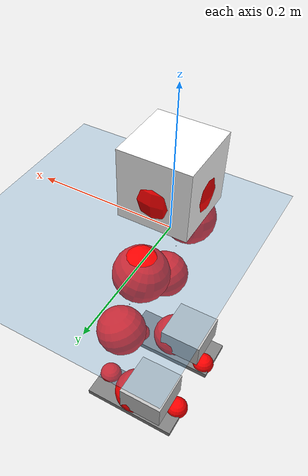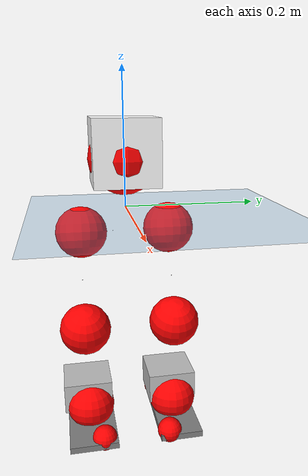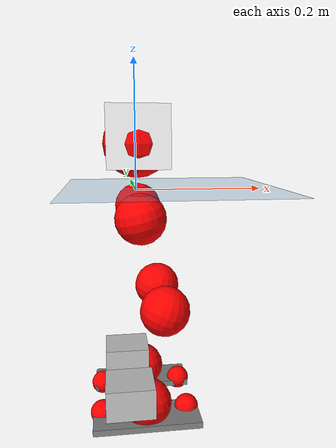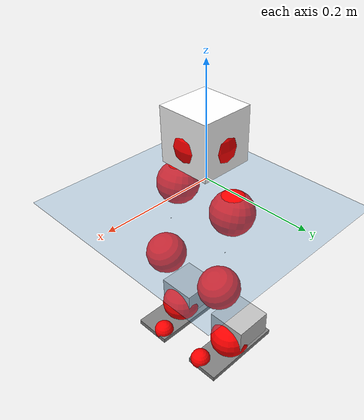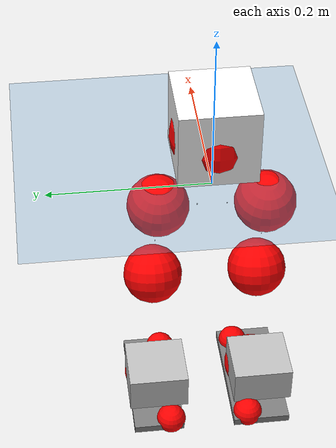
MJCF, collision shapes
<mujoco model="pi_12dof_release_v1">
  <compiler angle="radian" assetdir="assets" balanceinertia="true" inertiafromgeom="false"/>

  <option timestep="0.005" density="1.2" viscosity="2e-05"/>

  <size nkey="1"/>

  <visual>
    <quality shadowsize="8192"/>
    <map shadowclip="0.5"/>
  </visual>

  <default>
    <default class="/">
      <joint armature="0.01" damping="0.01" frictionloss="0.01"/>
      <geom contype="0" conaffinity="0" group="1" solref="-1000 -80"/>
      <site size="0.01 0.005 0.005" group="5"/>
      <general forcelimited="true" biastype="affine" gainprm="20" biasprm="0 -20 -0.5"/>
      <default class="foot">
        <geom size="0.0845 0.036 0.005" type="box" condim="6" group="4" priority="1" friction="0.9 0.2 0.2" solimp="0.015 1 0.005"/>
      </default>
      <default class="reward_collision_sphere">
        <geom group="5" rgba="1 0 0 1"/>
      </default>
    </default>
  </default>

  <asset>
    <texture type="skybox" colorspace="auto" name="//unnamed_texture_0" builtin="gradient" rgb1="0.95 0.95 0.95" rgb2="0.95 0.95 0.95" width="100" height="600"/>
    <texture type="2d" colorspace="auto" name="texplane" builtin="checker" rgb1="0.345 0.575 0.748" rgb2="0.345 0.575 0.748" markrgb="1 1 1" width="512" height="512"/>
    <material name="MatPlane" class="/" texture="texplane" texuniform="true" texrepeat="2 2" specular="0.9"/>
    <mesh name="baselink_1" class="/" file="baselink_1.STL"/>
    <mesh name="r_hip_pitch_link" class="/" file="r_hip_pitch_link.STL"/>
    <mesh name="r_hip_roll_link" class="/" file="r_hip_roll_link.STL"/>
    <mesh name="r_thigh_link" class="/" file="r_thigh_link.STL"/>
    <mesh name="r_calf_link" class="/" file="r_calf_link.STL"/>
    <mesh name="r_ankle_pitch_link" class="/" file="r_ankle_pitch_link.STL"/>
    <mesh name="r_ankle_roll_link" class="/" file="r_ankle_roll_link.STL"/>
    <mesh name="l_hip_pitch_link" class="/" file="l_hip_pitch_link.STL"/>
    <mesh name="l_hip_roll_link" class="/" file="l_hip_roll_link.STL"/>
    <mesh name="l_thigh_link" class="/" file="l_thigh_link.STL"/>
    <mesh name="l_calf_link" class="/" file="l_calf_link.STL"/>
    <mesh name="l_ankle_pitch_link" class="/" file="l_ankle_pitch_link.STL"/>
    <mesh name="l_ankle_roll_link" class="/" file="l_ankle_roll_link.STL"/>
  </asset>

  <worldbody>
    <geom name="floor" class="/" size="100 100 0.125" type="plane" group="0" material="MatPlane"/>
    <light name="toplight_shadow" class="/" pos="0 0 5" dir="0.0990148 0.0990148 -0.990148" type="directional" ambient="0.04 0.04 0.04" diffuse="0.55 0.55 0.55" specular="0.12 0.12 0.12"/>
    <light name="toplight_fill" class="/" pos="0 0 5" dir="0.0990148 0.0990148 -0.990148" type="directional" castshadow="false" ambient="0.04 0.04 0.04" diffuse="0.3 0.3 0.3" specular="0.08 0.08 0.08"/>
    <body name="trunk" pos="0.00260488 -0.000507177 -0.000404849" quat="1 0.000435777 0.00023393 0.000197884">
      <inertial pos="0.002317 0.000628698 0.041794" quat="0.69562 0.00742423 0.0110567 0.718286" mass="1.89514" diaginertia="0.0100789 0.00410816 0.00490634"/>
      <joint name="//unnamed_joint_0" type="free"/>
      <geom name="//unnamed_geom_1" class="/" type="mesh" density="0" rgba="1 1 1 1" mesh="baselink_1"/>
      <geom name="//unnamed_geom_2" class="/" size="0.0479095 0.0479095 0.0479095" pos="0 0 0.0826528" type="box" rgba="1 1 1 1"/>
      <geom name="//unnamed_geom_3" class="reward_collision_sphere" size="0.0527005" pos="0 0 0.0723212"/>
      <site name="imu" class="/" pos="-0.00527661 0.00202853 -0.0135368" size="0.00958191"/>
      <camera name="track" class="/" pos="0 -1.69545 0" quat="0.707107 0.707107 0 0" mode="trackcom"/>
      <camera name="ego_camera" class="/" pos="0.0745266 0 0.185969" quat="-0.5 -0.5 0.5 0.5"/>
      <body name="r_hip_pitch_link" pos="0.00135394 -0.0196256 -0.0346633" quat="0.992214 0.000853166 -0.124537 0.000969437">
        <inertial pos="-0.00160021 -0.0480849 -6.28759e-05" quat="-0.0191342 0.707009 -0.0290534 0.706348" mass="0.327461" diaginertia="0.000105755 4.16747e-05 9.74162e-05"/>
        <joint name="r_hip_pitch_joint" class="/" pos="0 0 0" axis="-0.0137894 -0.999904 -0.00166843" stiffness="0.00255955" range="-1.69553 1.27853" armature="0.009549" damping="0.0258213" frictionloss="0.0095073"/>
        <geom name="//unnamed_geom_4" class="/" type="mesh" density="0" rgba="0.75294 0.75294 0.75294 1" mesh="r_hip_pitch_link"/>
        <geom name="//unnamed_geom_5" class="/" size="0.000479095 0.000479095 0.000479095" type="box" rgba="0.75294 0.75294 0.75294 1"/>
        <body name="r_hip_roll_link" pos="-0.0014552 -0.0469191 -8.92082e-05" quat="1 -0.000127855 2.85459e-05 0.000112853">
          <inertial pos="-0.00127227 0.000395881 -0.0659523" quat="0.705709 -0.0791842 -0.0824126 0.699223" mass="0.347634" diaginertia="0.000328724 0.000123037 0.000151943"/>
          <joint name="r_hip_roll_joint" class="/" pos="0 0 0" axis="-0.999929 0.0106632 -0.00539952" range="-0.131134 0.54755" armature="0.00941588" damping="0.00327463" frictionloss="0.00869649"/>
          <geom name="//unnamed_geom_6" class="/" type="mesh" density="0" rgba="0.75294 0.75294 0.75294 1" mesh="r_hip_roll_link"/>
          <geom name="//unnamed_geom_7" class="/" size="0.000479095 0.000479095 0.000479095" type="box" rgba="0.75294 0.75294 0.75294 1"/>
          <geom name="//unnamed_geom_8" class="reward_collision_sphere" size="0.0383276"/>
          <body name="r_thigh_link" pos="0.00104498 -0.0022319 -0.0714826" quat="1 -0.000591872 -0.000497144 0.000384864">
            <inertial pos="0.000613587 0.00204009 -0.0492219" quat="0.744482 0.667593 -0.00264403 0.00766867" mass="0.10183" diaginertia="0.000119545 4.18247e-05 6.69911e-05"/>
            <joint name="r_thigh_joint" class="/" pos="0 0 0" axis="-0.00842436 -0.000994319 -0.999964" range="-0.265848 0.648388" armature="0.00935621" damping="0.00318869" frictionloss="0.00956773"/>
            <geom name="//unnamed_geom_9" class="/" type="mesh" density="0" rgba="0.75294 0.75294 0.75294 1" mesh="r_thigh_link"/>
            <geom name="//unnamed_geom_10" class="/" size="0.000479095 0.000479095 0.000479095" type="box" rgba="0.75294 0.75294 0.75294 1"/>
            <body name="r_calf_link" pos="-0.00252428 0.000114992 -0.0746526" quat="0.94766 9.0733e-05 0.319282 8.16591e-05">
              <inertial pos="0.00237783 -0.00161855 -0.0748274" quat="0.999992 -0.0011206 0.00378161 0.000865873" mass="0.735621" diaginertia="0.00350412 0.00155535 0.000212673"/>
              <joint name="r_calf_joint" class="/" pos="0 0 0" axis="-0.00594489 -0.999955 0.00739569" range="-1.65503 0.647826" armature="0.00976334" damping="0.0126749" frictionloss="0.00990836"/>
              <geom name="//unnamed_geom_11" class="/" type="mesh" density="0" rgba="0.75294 0.75294 0.75294 1" mesh="r_calf_link"/>
              <geom name="//unnamed_geom_12" class="/" size="0.000479095 0.000479095 0.000479095" type="box" rgba="0.75294 0.75294 0.75294 1"/>
              <geom name="//unnamed_geom_13" class="reward_collision_sphere" size="0.0383276"/>
              <body name="r_ankle_pitch_link" pos="0.000275547 -0.000100091 -0.143573" quat="0.980056 3.10225e-05 -0.198722 2.4053e-05">
                <inertial pos="0.00432499 0.00563598 -0.00135424" quat="0.00131283 0.706675 -0.00199505 0.707534" mass="0.153178" diaginertia="0.000298797 9.52722e-05 0.000139433"/>
                <joint name="r_ankle_pitch_joint" class="/" pos="0 0 0" axis="-0.006793 -0.99996 0.00585756" range="-1.30502 0.498821" armature="0.00852759" damping="0.00873965" frictionloss="0.00872356"/>
                <geom name="//unnamed_geom_14" class="/" type="mesh" density="0" rgba="0.75294 0.75294 0.75294 1" mesh="r_ankle_pitch_link"/>
                <geom name="//unnamed_geom_15" class="/" size="0.0373694 0.0383276 0.0239548" type="box" rgba="0.75294 0.75294 0.75294 1"/>
                <body name="r_ankle_roll_link" pos="0.0764327 0.0032785 0.00266286" quat="0.999999 0.00104032 0.000902929 -6.22813e-05">
                  <inertial pos="-0.0211596 -0.00107116 -0.0127064" quat="0.560332 0.431214 0.430625 0.560932" mass="0.445665" diaginertia="0.00110961 0.000468925 0.000347144"/>
                  <joint name="r_ankle_roll_joint" class="/" pos="0 0 0" axis="-0.99992 -0.00182139 0.0125469" range="-0.156256 0.161888" armature="0.00907486" damping="0.0206677" frictionloss="0.0098771"/>
                  <geom name="//unnamed_geom_16" class="/" type="mesh" density="0" rgba="0.75294 0.75294 0.75294 1" mesh="r_ankle_roll_link"/>
                  <geom name="//unnamed_geom_17" class="/" type="mesh" rgba="0.75294 0.75294 0.75294 1" mesh="r_ankle_roll_link"/>
                  <geom name="right_foot" class="foot" size="0.0834024 0.0369752 0.00489479" pos="-0.0506781 0 -0.045459"/>
                  <geom name="//unnamed_geom_19" class="reward_collision_sphere" size="0.0383276" pos="-0.0496844 0 -0.0206632"/>
                  <geom name="//unnamed_geom_20" class="reward_collision_sphere" size="0.0191638" pos="0.0149053 0.0169545 -0.0413264"/>
                  <geom name="//unnamed_geom_21" class="reward_collision_sphere" size="0.0191638" pos="-0.119243 0.0169545 -0.0413264"/>
                  <site name="right_foot" class="foot" pos="-0.0506781 0 -0.045459" size="0.00958191"/>
                </body>
              </body>
            </body>
          </body>
        </body>
      </body>
      <body name="l_hip_pitch_link" pos="0.00202556 0.0172599 -0.0340117" quat="0.992173 0.000344256 -0.124868 4.45801e-05">
        <inertial pos="0.00354231 0.0431105 -5.11761e-05" quat="-0.0503222 0.707598 0.0327832 0.704058" mass="0.343409" diaginertia="0.000126516 4.63321e-05 0.000115356"/>
        <joint name="l_hip_pitch_joint" class="/" pos="0 0 0" axis="0.00928143 0.999944 -0.00506445" range="-1.3005 1.73965" armature="0.00828251" damping="0.00507419" frictionloss="0.00968678"/>
        <geom name="//unnamed_geom_22" class="/" type="mesh" density="0" rgba="0.75294 0.75294 0.75294 1" mesh="l_hip_pitch_link"/>
        <geom name="//unnamed_geom_23" class="/" size="0.000479095 0.000479095 0.000479095" type="box" rgba="0.75294 0.75294 0.75294 1"/>
        <body name="l_hip_roll_link" pos="0.00172534 0.0476022 0.000600479" quat="1 0.000146356 9.64105e-05 -8.133e-05">
          <inertial pos="-0.00224162 0.0026605 -0.0629425" quat="0.696259 -0.085073 -0.0799612 0.708232" mass="0.345297" diaginertia="0.000323803 0.000125103 0.000149618"/>
          <joint name="l_hip_roll_joint" class="/" pos="0 0 0" axis="-1 -0.000183814 2.83161e-05" range="-0.492196 0.113731" armature="0.0107964" damping="0" frictionloss="0.00917167"/>
          <geom name="//unnamed_geom_24" class="/" type="mesh" density="0" rgba="0.75294 0.75294 0.75294 1" mesh="l_hip_roll_link"/>
          <geom name="//unnamed_geom_25" class="/" size="0.000479095 0.000479095 0.000479095" type="box" rgba="0.75294 0.75294 0.75294 1"/>
          <geom name="//unnamed_geom_26" class="reward_collision_sphere" size="0.0383276"/>
          <body name="l_thigh_link" pos="-0.00101362 0.00189314 -0.0742349" quat="0.999999 0.000827292 0.000843422 0.000561175">
            <inertial pos="-0.000282241 -0.00152211 -0.0466111" quat="0.677476 0.735543 -0.000571372 -0.00127761" mass="0.0954702" diaginertia="0.000120019 4.1297e-05 6.82339e-05"/>
            <joint name="l_thigh_joint" class="/" pos="0 0 0" axis="-0.00279065 -0.00528888 -0.999982" range="-0.655424 0.304124" armature="0.00954413" damping="0" frictionloss="0.00964141"/>
            <geom name="//unnamed_geom_27" class="/" type="mesh" density="0" rgba="0.75294 0.75294 0.75294 1" mesh="l_thigh_link"/>
            <geom name="//unnamed_geom_28" class="/" size="0.000479095 0.000479095 0.000479095" type="box" rgba="0.75294 0.75294 0.75294 1"/>
            <body name="l_calf_link" pos="-0.0033417 0.00114367 -0.0717571" quat="0.947677 0.00036605 0.319232 0.000275897">
              <inertial pos="0.00212267 0.00284933 -0.072057" quat="0.999947 0.000876744 -0.00869338 -0.00551695" mass="0.721766" diaginertia="0.0034843 0.00157538 0.00021075"/>
              <joint name="l_calf_joint" class="/" pos="0 0 0" axis="0.00622759 0.999908 -0.0120212" stiffness="0.00175418" range="-0.615949 1.64288" armature="0.0094054" damping="0.00825848" frictionloss="0.00842838"/>
              <geom name="//unnamed_geom_29" class="/" type="mesh" density="0" rgba="0.75294 0.75294 0.75294 1" mesh="l_calf_link"/>
              <geom name="//unnamed_geom_30" class="/" size="0.000479095 0.000479095 0.000479095" type="box" rgba="0.75294 0.75294 0.75294 1"/>
              <geom name="//unnamed_geom_31" class="reward_collision_sphere" size="0.0383276"/>
              <body name="l_ankle_pitch_link" pos="1.93163e-05 0.00148778 -0.142549" quat="0.980067 -1.59755e-06 -0.198666 0.000262359">
                <inertial pos="0.00374872 -0.00118848 -0.00112311" quat="-0.00206125 0.71468 -0.00540138 0.699428" mass="0.156643" diaginertia="0.000295659 9.98667e-05 0.000145481"/>
                <joint name="l_ankle_pitch_joint" class="/" pos="0 0 0" axis="0.000221565 0.999994 -0.00351085" range="-0.478404 1.33139" armature="0.010124" damping="0" frictionloss="0.00915468"/>
                <geom name="//unnamed_geom_32" class="/" type="mesh" density="0" rgba="0.75294 0.75294 0.75294 1" mesh="l_ankle_pitch_link"/>
                <geom name="//unnamed_geom_33" class="/" size="0.0373694 0.0383276 0.0239548" type="box" rgba="0.75294 0.75294 0.75294 1"/>
                <body name="l_ankle_roll_link" pos="0.0755262 0.00146499 -0.00038758" quat="1 -0.000100126 9.57132e-05 -3.07915e-05">
                  <inertial pos="-0.0270355 -0.00285883 -0.0122948" quat="0.559032 0.430679 0.436372 0.558192" mass="0.46961" diaginertia="0.00107426 0.000465082 0.000333312"/>
                  <joint name="l_ankle_roll_joint" class="/" pos="0 0 0" axis="-0.99999 0.00445979 0.000781464" stiffness="0.00868161" range="-0.173838 0.128231" armature="0.00935992" damping="0.0205938" frictionloss="0.0108107"/>
                  <geom name="//unnamed_geom_34" class="/" type="mesh" density="0" rgba="0.75294 0.75294 0.75294 1" mesh="l_ankle_roll_link"/>
                  <geom name="//unnamed_geom_35" class="/" type="mesh" rgba="0.75294 0.75294 0.75294 1" mesh="l_ankle_roll_link"/>
                  <geom name="left_foot" class="foot" size="0.0808291 0.0329431 0.00480937" pos="-0.0506781 0 -0.045459"/>
                  <geom name="//unnamed_geom_37" class="reward_collision_sphere" size="0.0383276" pos="-0.0496844 0 -0.0206632"/>
                  <geom name="//unnamed_geom_38" class="reward_collision_sphere" size="0.0191638" pos="0.0149053 -0.0169545 -0.0413264"/>
                  <geom name="//unnamed_geom_39" class="reward_collision_sphere" size="0.0191638" pos="-0.119243 -0.0169545 -0.0413264"/>
                  <site name="left_foot" class="foot" pos="-0.0506781 0 -0.045459" size="0.00958191"/>
                </body>
              </body>
            </body>
          </body>
        </body>
      </body>
    </body>
  </worldbody>

  <contact>
    <pair class="/" geom1="floor" geom2="right_foot" name="//unnamed_contact_1"/>
    <pair class="/" geom1="floor" geom2="left_foot" name="//unnamed_contact_0"/>
  </contact>

  <actuator>
    <general name="r_hip_pitch_joint" class="/" joint="r_hip_pitch_joint" forcerange="-20.0789 20.0789" gainprm="19.2402" biasprm="0 -19.2402 -0.482308"/>
    <general name="r_hip_roll_joint" class="/" joint="r_hip_roll_joint" forcerange="-22.1501 22.1501" gainprm="19.2402" biasprm="0 -19.2402 -0.482308"/>
    <general name="r_thigh_joint" class="/" joint="r_thigh_joint" forcerange="-20.5849 20.5849" gainprm="19.2402" biasprm="0 -19.2402 -0.482308"/>
    <general name="r_calf_joint" class="/" joint="r_calf_joint" forcerange="-22.1374 22.1374" gainprm="19.2402" biasprm="0 -19.2402 -0.482308"/>
    <general name="r_ankle_pitch_joint" class="/" joint="r_ankle_pitch_joint" forcerange="-20.8946 20.8946" gainprm="19.2402" biasprm="0 -19.2402 -0.482308"/>
    <general name="r_ankle_roll_joint" class="/" joint="r_ankle_roll_joint" forcerange="-19.3496 19.3496" gainprm="19.2402" biasprm="0 -19.2402 -0.482308"/>
    <general name="l_hip_pitch_joint" class="/" joint="l_hip_pitch_joint" forcerange="-20.0415 20.0415" gainprm="19.2402" biasprm="0 -19.2402 -0.482308"/>
    <general name="l_hip_roll_joint" class="/" joint="l_hip_roll_joint" forcerange="-18.3231 18.3231" gainprm="19.2402" biasprm="0 -19.2402 -0.482308"/>
    <general name="l_thigh_joint" class="/" joint="l_thigh_joint" forcerange="-19.9337 19.9337" gainprm="19.2402" biasprm="0 -19.2402 -0.482308"/>
    <general name="l_calf_joint" class="/" joint="l_calf_joint" forcerange="-20.0765 20.0765" gainprm="19.2402" biasprm="0 -19.2402 -0.482308"/>
    <general name="l_ankle_pitch_joint" class="/" joint="l_ankle_pitch_joint" forcerange="-19.9788 19.9788" gainprm="19.2402" biasprm="0 -19.2402 -0.482308"/>
    <general name="l_ankle_roll_joint" class="/" joint="l_ankle_roll_joint" forcerange="-20.8473 20.8473" gainprm="19.2402" biasprm="0 -19.2402 -0.482308"/>
  </actuator>

  <sensor>
    <gyro site="imu" name="imu_angular_velocity"/>
    <velocimeter site="imu" name="imu_linear_velocity"/>
    <framelinvel objtype="site" objname="left_foot" name="left_foot_global_linear_velocity"/>
    <framelinvel objtype="site" objname="right_foot" name="right_foot_global_linear_velocity"/>
  </sensor>

  <keyframe>
    <key name="home" qpos="0 0 0.291 1 0 0 0 0.4 0 0 -0.8 0.4 0 -0.4 0 0 0.8 -0.4 0"/>
  </keyframe>
</mujoco>
